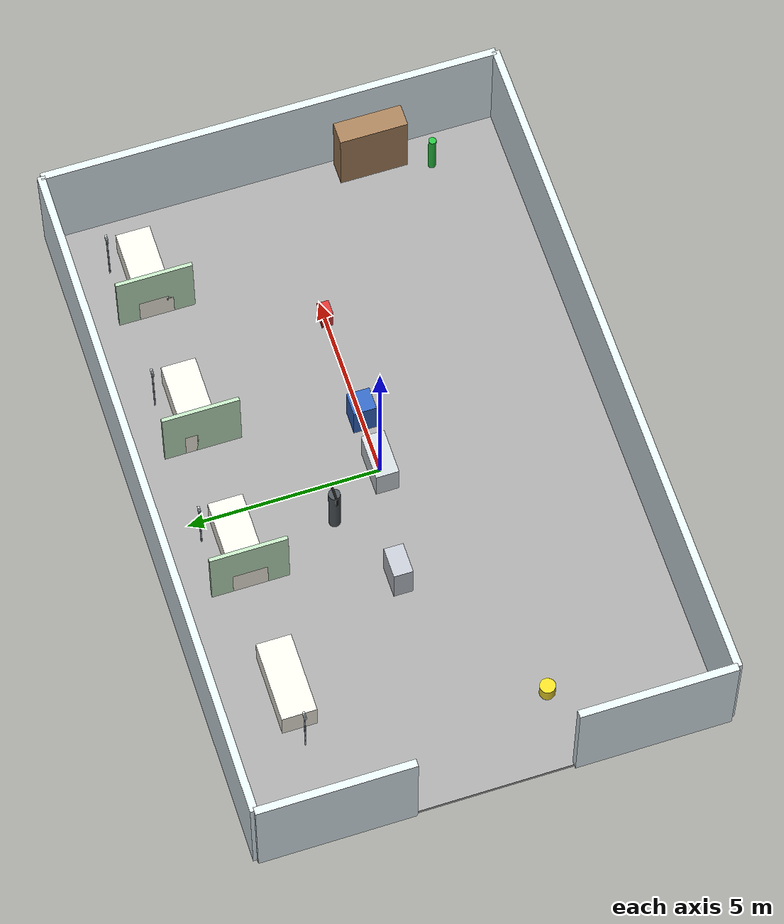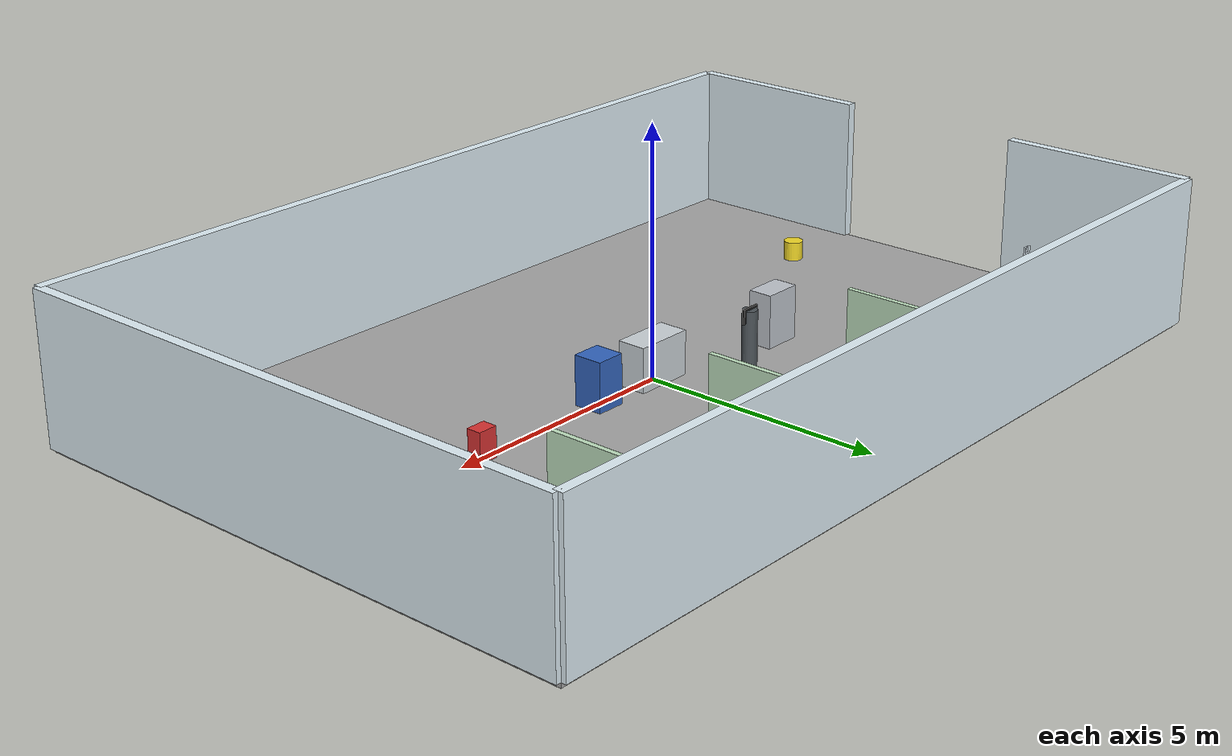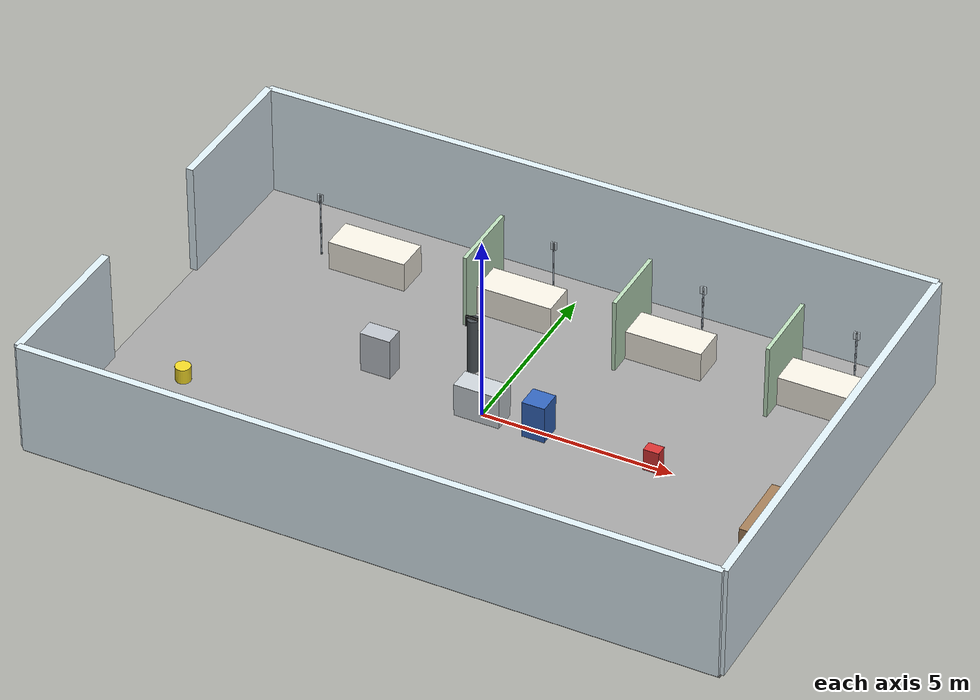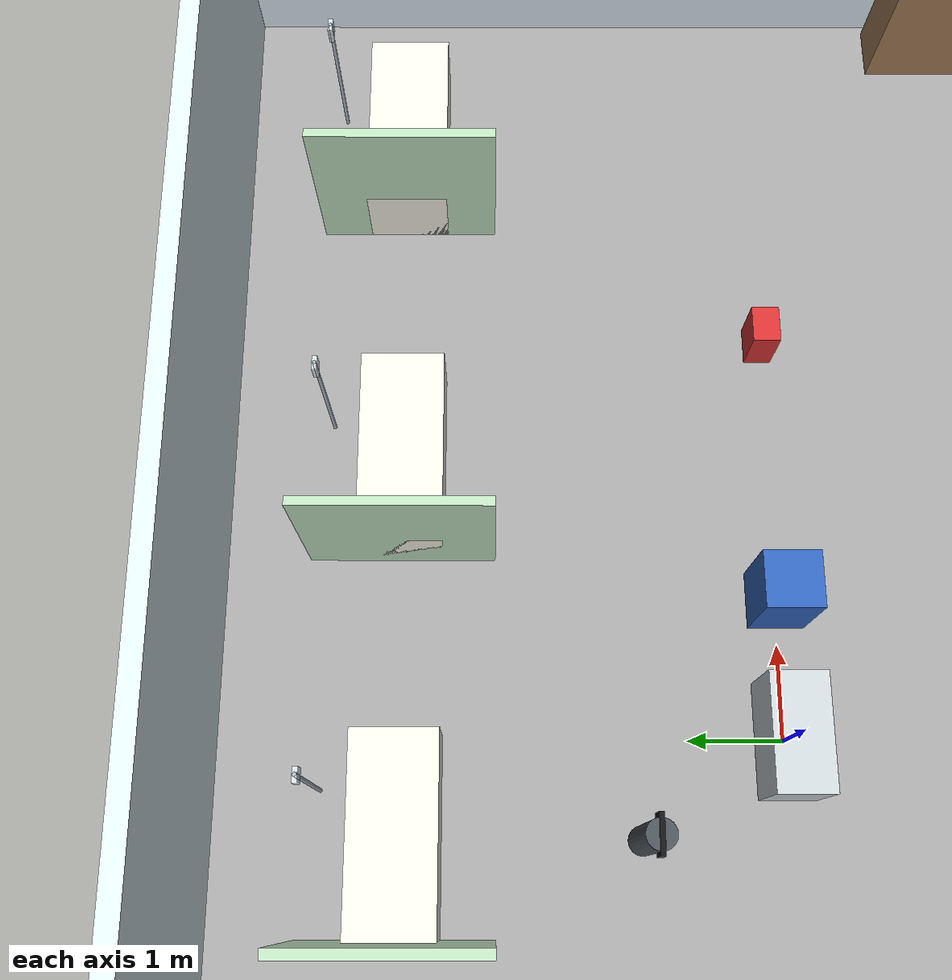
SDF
<?xml version="1.0" ?>
<sdf version="1.8">
  <world name="emergency_room">

    <!-- Physics Configuration -->
    <physics name="1ms" type="ignored">
      <max_step_size>0.001</max_step_size>
      <real_time_factor>1.0</real_time_factor>
    </physics>

    <!-- Plugin for physics -->
   <plugin name='ignition::gazebo::systems::Physics' filename='ignition-gazebo-physics-system'/>

    <!-- Plugin for user commands -->
    <plugin name='ignition::gazebo::systems::UserCommands' filename='ignition-gazebo-user-commands-system'/>

    <!-- Plugin for scene broadcast -->
   <plugin name='ignition::gazebo::systems::SceneBroadcaster' filename='ignition-gazebo-scene-broadcaster-system'/>

    <!-- Plugin for sensors -->
    <plugin filename="ignition-gazebo-sensors-system" name="ignition::gazebo::systems::Sensors">
      <render_engine>ogre2</render_engine>
    </plugin>

    <!-- Scene settings -->
    <scene>
      <ambient>0.6 0.6 0.6 1</ambient>
      <background>0.8 0.8 0.8 1</background>
      <shadows>true</shadows>
      <grid>false</grid>
    </scene>

    <!-- Lighting -->
    <light type="directional" name="sun">
      <cast_shadows>true</cast_shadows>
      <pose>0 0 10 0 0 0</pose>
      <diffuse>0.8 0.8 0.8 1</diffuse>
      <specular>0.2 0.2 0.2 1</specular>
      <attenuation>
        <range>1000</range>
        <constant>0.9</constant>
        <linear>0.01</linear>
        <quadratic>0.001</quadratic>
      </attenuation>
      <direction>-0.5 0.1 -0.9</direction>
    </light>

    <!-- Overhead ER Lighting -->

    <!-- Floor -->
    <model name="emergency_room_floor">
      <static>true</static>
      <link name="floor_link">
        <collision name="floor_collision">
          <geometry>
            <box>
              <size>18 12 0.1</size>
            </box>
          </geometry>
        </collision>
        <visual name="floor_visual">
          <geometry>
            <box>
              <size>18 12 0.1</size>
            </box>
          </geometry>
          <material>
            <ambient>0.6 0.6 0.6 1</ambient>
            <diffuse>0.65 0.65 0.65 1</diffuse>
            <specular>0.2 0.2 0.2 1</specular>
          </material>
        </visual>
        <pose>0 0 -0.05 0 0 0</pose>
      </link>
    </model>

    <!-- Room Walls -->
    <!-- North Wall -->
    <model name="north_wall">
      <static>true</static>
      <link name="wall_link">
        <collision name="wall_collision">
          <geometry>
            <box>
              <size>18 0.2 3</size>
            </box>
          </geometry>
        </collision>
        <visual name="wall_visual">
          <geometry>
            <box>
              <size>18 0.2 3</size>
            </box>
          </geometry>
          <material>
            <ambient>0.85 0.92 0.95 1</ambient>
            <diffuse>0.88 0.94 0.97 1</diffuse>
          </material>
        </visual>
        <pose>0 6 1.5 0 0 0</pose>
      </link>
    </model>

    <!-- South Wall -->
    <model name="south_wall">
      <static>true</static>
      <link name="wall_link">
        <collision name="wall_collision">
          <geometry>
            <box>
              <size>18 0.2 3</size>
            </box>
          </geometry>
        </collision>
        <visual name="wall_visual">
          <geometry>
            <box>
              <size>18 0.2 3</size>
            </box>
          </geometry>
          <material>
            <ambient>0.85 0.92 0.95 1</ambient>
            <diffuse>0.88 0.94 0.97 1</diffuse>
          </material>
        </visual>
        <pose>0 -6 1.5 0 0 0</pose>
      </link>
    </model>

    <!-- East Wall -->
    <model name="east_wall">
      <static>true</static>
      <link name="wall_link">
        <collision name="wall_collision">
          <geometry>
            <box>
              <size>0.2 12 3</size>
            </box>
          </geometry>
        </collision>
        <visual name="wall_visual">
          <geometry>
            <box>
              <size>0.2 12 3</size>
            </box>
          </geometry>
          <material>
            <ambient>0.85 0.92 0.95 1</ambient>
            <diffuse>0.88 0.94 0.97 1</diffuse>
          </material>
        </visual>
        <pose>9 0 1.5 0 0 0</pose>
      </link>
    </model>

    <!-- West Wall with Door Opening -->
    <model name="west_wall_1">
      <static>true</static>
      <link name="wall_link">
        <collision name="wall_collision">
          <geometry>
            <box>
              <size>0.2 4 3</size>
            </box>
          </geometry>
        </collision>
        <visual name="wall_visual">
          <geometry>
            <box>
              <size>0.2 4 3</size>
            </box>
          </geometry>
          <material>
            <ambient>0.85 0.92 0.95 1</ambient>
            <diffuse>0.88 0.94 0.97 1</diffuse>
          </material>
        </visual>
        <pose>-9 4 1.5 0 0 0</pose>
      </link>
    </model>

    <model name="west_wall_2">
      <static>true</static>
      <link name="wall_link">
        <collision name="wall_collision">
          <geometry>
            <box>
              <size>0.2 4 3</size>
            </box>
          </geometry>
        </collision>
        <visual name="wall_visual">
          <geometry>
            <box>
              <size>0.2 4 3</size>
            </box>
          </geometry>
          <material>
            <ambient>0.85 0.92 0.95 1</ambient>
            <diffuse>0.88 0.94 0.97 1</diffuse>
          </material>
        </visual>
        <pose>-9 -4 1.5 0 0 0</pose>
      </link>
    </model>

    <!-- Divider Walls for privacy between beds -->
    <model name="privacy_divider_1">
      <static>true</static>
      <link name="divider_link">
        <collision name="divider_collision">
          <geometry>
            <box>
              <size>0.1 2 2</size>
            </box>
          </geometry>
        </collision>
        <visual name="divider_visual">
          <geometry>
            <box>
              <size>0.1 2 2</size>
            </box>
          </geometry>
          <material>
            <ambient>0.7 0.85 0.7 1</ambient>
            <diffuse>0.75 0.88 0.75 1</diffuse>
          </material>
        </visual>
        <pose>-2 4 1 0 0 0</pose>
      </link>
    </model>

    <model name="privacy_divider_2">
      <static>true</static>
      <link name="divider_link">
        <collision name="divider_collision">
          <geometry>
            <box>
              <size>0.1 2 2</size>
            </box>
          </geometry>
        </collision>
        <visual name="divider_visual">
          <geometry>
            <box>
              <size>0.1 2 2</size>
            </box>
          </geometry>
          <material>
            <ambient>0.7 0.85 0.7 1</ambient>
            <diffuse>0.75 0.88 0.75 1</diffuse>
          </material>
        </visual>
        <pose>2 4 1 0 0 0</pose>
      </link>
    </model>

    <model name="privacy_divider_3">
      <static>true</static>
      <link name="divider_link">
        <collision name="divider_collision">
          <geometry>
            <box>
              <size>0.1 2 2</size>
            </box>
          </geometry>
        </collision>
        <visual name="divider_visual">
          <geometry>
            <box>
              <size>0.1 2 2</size>
            </box>
          </geometry>
          <material>
            <ambient>0.7 0.85 0.7 1</ambient>
            <diffuse>0.75 0.88 0.75 1</diffuse>
          </material>
        </visual>
        <pose>6 4 1 0 0 0</pose>
      </link>
    </model>

    <!-- Hospital Bed 1 (Stretcher) -->
    <model name="hospital_bed_1">
      <static>true</static>
      <link name="bed_frame">
        <collision name="bed_collision">
          <geometry>
            <box>
              <size>2.1 0.9 0.8</size>
            </box>
          </geometry>
        </collision>
        <visual name="bed_visual">
          <geometry>
            <box>
              <size>2.1 0.9 0.8</size>
            </box>
          </geometry>
          <material>
            <ambient>0.95 0.93 0.88 1</ambient>
            <diffuse>0.97 0.95 0.90 1</diffuse>
          </material>
        </visual>
        <pose>-5 4 0.4 0 0 0</pose>
      </link>
      <!-- Bed wheels -->
      <link name="wheel_1">
        <visual name="wheel_visual">
          <geometry>
            <cylinder>
              <radius>0.05</radius>
              <length>0.02</length>
            </cylinder>
          </geometry>
          <material>
            <ambient>0.15 0.15 0.15 1</ambient>
            <diffuse>0.2 0.2 0.2 1</diffuse>
          </material>
        </visual>
        <pose>-5.8 3.6 0.05 1.57 0 0</pose>
      </link>
      <link name="wheel_2">
        <visual name="wheel_visual">
          <geometry>
            <cylinder>
              <radius>0.05</radius>
              <length>0.02</length>
            </cylinder>
          </geometry>
          <material>
            <ambient>0.15 0.15 0.15 1</ambient>
            <diffuse>0.2 0.2 0.2 1</diffuse>
          </material>
        </visual>
        <pose>-5.8 4.4 0.05 1.57 0 0</pose>
      </link>
    </model>

    <!-- Hospital Bed 2 (Stretcher) -->
    <model name="hospital_bed_2">
      <static>true</static>
      <link name="bed_frame">
        <collision name="bed_collision">
          <geometry>
            <box>
              <size>2.1 0.9 0.8</size>
            </box>
          </geometry>
        </collision>
        <visual name="bed_visual">
          <geometry>
            <box>
              <size>2.1 0.9 0.8</size>
            </box>
          </geometry>
          <material>
            <ambient>0.95 0.93 0.88 1</ambient>
            <diffuse>0.97 0.95 0.90 1</diffuse>
          </material>
        </visual>
        <pose>-1 4 0.4 0 0 0</pose>
      </link>
      <!-- Bed wheels -->
      <link name="wheel_1">
        <visual name="wheel_visual">
          <geometry>
            <cylinder>
              <radius>0.05</radius>
              <length>0.02</length>
            </cylinder>
          </geometry>
          <material>
            <ambient>0.15 0.15 0.15 1</ambient>
            <diffuse>0.2 0.2 0.2 1</diffuse>
          </material>
        </visual>
        <pose>-1.8 3.6 0.05 1.57 0 0</pose>
      </link>
      <link name="wheel_2">
        <visual name="wheel_visual">
          <geometry>
            <cylinder>
              <radius>0.05</radius>
              <length>0.02</length>
            </cylinder>
          </geometry>
          <material>
            <ambient>0.15 0.15 0.15 1</ambient>
            <diffuse>0.2 0.2 0.2 1</diffuse>
          </material>
        </visual>
        <pose>-1.8 4.4 0.05 1.57 0 0</pose>
      </link>
    </model>

    <!-- Hospital Bed 3 (Stretcher) - Right side -->
    <model name="hospital_bed_3">
      <static>true</static>
      <link name="bed_frame">
        <collision name="bed_collision">
          <geometry>
            <box>
              <size>2.1 0.9 0.8</size>
            </box>
          </geometry>
        </collision>
        <visual name="bed_visual">
          <geometry>
            <box>
              <size>2.1 0.9 0.8</size>
            </box>
          </geometry>
          <material>
            <ambient>0.95 0.93 0.88 1</ambient>
            <diffuse>0.97 0.95 0.90 1</diffuse>
          </material>
        </visual>
        <pose>3 4 0.4 0 0 0</pose>
      </link>
      <!-- Bed wheels -->
      <link name="wheel_1">
        <visual name="wheel_visual">
          <geometry>
            <cylinder>
              <radius>0.05</radius>
              <length>0.02</length>
            </cylinder>
          </geometry>
          <material>
            <ambient>0.15 0.15 0.15 1</ambient>
            <diffuse>0.2 0.2 0.2 1</diffuse>
          </material>
        </visual>
        <pose>2.2 3.6 0.05 1.57 0 0</pose>
      </link>
      <link name="wheel_2">
        <visual name="wheel_visual">
          <geometry>
            <cylinder>
              <radius>0.05</radius>
              <length>0.02</length>
            </cylinder>
          </geometry>
          <material>
            <ambient>0.15 0.15 0.15 1</ambient>
            <diffuse>0.2 0.2 0.2 1</diffuse>
          </material>
        </visual>
        <pose>2.2 4.4 0.05 1.57 0 0</pose>
      </link>
    </model>

    <!-- Hospital Bed 4 (Stretcher) - Right side -->
    <model name="hospital_bed_4">
      <static>true</static>
      <link name="bed_frame">
        <collision name="bed_collision">
          <geometry>
            <box>
              <size>2.1 0.9 0.8</size>
            </box>
          </geometry>
        </collision>
        <visual name="bed_visual">
          <geometry>
            <box>
              <size>2.1 0.9 0.8</size>
            </box>
          </geometry>
          <material>
            <ambient>0.95 0.93 0.88 1</ambient>
            <diffuse>0.97 0.95 0.90 1</diffuse>
          </material>
        </visual>
        <pose>7 4 0.4 0 0 0</pose>
      </link>
      <!-- Bed wheels -->
      <link name="wheel_1">
        <visual name="wheel_visual">
          <geometry>
            <cylinder>
              <radius>0.05</radius>
              <length>0.02</length>
            </cylinder>
          </geometry>
          <material>
            <ambient>0.15 0.15 0.15 1</ambient>
            <diffuse>0.2 0.2 0.2 1</diffuse>
          </material>
        </visual>
        <pose>6.2 3.6 0.05 1.57 0 0</pose>
      </link>
      <link name="wheel_2">
        <visual name="wheel_visual">
          <geometry>
            <cylinder>
              <radius>0.05</radius>
              <length>0.02</length>
            </cylinder>
          </geometry>
          <material>
            <ambient>0.15 0.15 0.15 1</ambient>
            <diffuse>0.2 0.2 0.2 1</diffuse>
          </material>
        </visual>
        <pose>6.2 4.4 0.05 1.57 0 0</pose>
      </link>
    </model>

    <!-- Medical Table -->
    <model name="medical_table">
      <static>true</static>
      <link name="table_link">
        <collision name="table_collision">
          <geometry>
            <box>
              <size>1.2 0.6 0.9</size>
            </box>
          </geometry>
        </collision>
        <visual name="table_visual">
          <geometry>
            <box>
              <size>1.2 0.6 0.9</size>
            </box>
          </geometry>
          <material>
            <ambient>0.75 0.78 0.8 1</ambient>
            <diffuse>0.8 0.83 0.85 1</diffuse>
          </material>
        </visual>
        <pose>0 0 0.45 0 0 0</pose>
      </link>
    </model>

    <!-- Doctor's Chair -->
    <model name="doctors_chair">
      <static>true</static>
      <link name="chair_link">
        <collision name="chair_collision">
          <geometry>
            <box>
              <size>0.6 0.6 1.0</size>
            </box>
          </geometry>
        </collision>
        <visual name="chair_visual">
          <geometry>
            <box>
              <size>0.6 0.6 1.0</size>
            </box>
          </geometry>
          <material>
            <ambient>0.15 0.35 0.7 1</ambient>
            <diffuse>0.2 0.4 0.75 1</diffuse>
          </material>
        </visual>
        <pose>1.5 0 0.5 0 0 0</pose>
      </link>
    </model>

    <!-- IV Stand 1 -->
    <model name="iv_stand_1">
      <static>true</static>
      <link name="pole_link">
        <collision name="pole_collision">
          <geometry>
            <cylinder>
              <radius>0.02</radius>
              <length>1.8</length>
            </cylinder>
          </geometry>
        </collision>
        <visual name="pole_visual">
          <geometry>
            <cylinder>
              <radius>0.02</radius>
              <length>1.8</length>
            </cylinder>
          </geometry>
          <material>
            <ambient>0.6 0.65 0.7 1</ambient>
            <diffuse>0.7 0.75 0.8 1</diffuse>
          </material>
        </visual>
        <pose>-6.5 4 0.9 0 0 0</pose>
      </link>
      <!-- IV bag -->
      <link name="iv_bag">
        <visual name="bag_visual">
          <geometry>
            <box>
              <size>0.15 0.05 0.2</size>
            </box>
          </geometry>
          <material>
            <ambient>0.9 0.95 1.0 0.8</ambient>
            <diffuse>0.92 0.97 1.0 0.8</diffuse>
          </material>
        </visual>
        <pose>-6.5 4 1.7 0 0 0</pose>
      </link>
    </model>

    <!-- IV Stand 2 -->
    <model name="iv_stand_2">
      <static>true</static>
      <link name="pole_link">
        <collision name="pole_collision">
          <geometry>
            <cylinder>
              <radius>0.02</radius>
              <length>1.8</length>
            </cylinder>
          </geometry>
        </collision>
        <visual name="pole_visual">
          <geometry>
            <cylinder>
              <radius>0.02</radius>
              <length>1.8</length>
            </cylinder>
          </geometry>
          <material>
            <ambient>0.6 0.65 0.7 1</ambient>
            <diffuse>0.7 0.75 0.8 1</diffuse>
          </material>
        </visual>
        <pose>-0.5 4.8 0.9 0 0 0</pose>
      </link>
      <!-- IV bag -->
      <link name="iv_bag">
        <visual name="bag_visual">
          <geometry>
            <box>
              <size>0.15 0.05 0.2</size>
            </box>
          </geometry>
          <material>
            <ambient>0.9 0.95 1.0 0.8</ambient>
            <diffuse>0.92 0.97 1.0 0.8</diffuse>
          </material>
        </visual>
        <pose>-0.5 4.8 1.7 0 0 0</pose>
      </link>
    </model>

    <!-- IV Stand 3 -->
    <model name="iv_stand_3">
      <static>true</static>
      <link name="pole_link">
        <collision name="pole_collision">
          <geometry>
            <cylinder>
              <radius>0.02</radius>
              <length>1.8</length>
            </cylinder>
          </geometry>
        </collision>
        <visual name="pole_visual">
          <geometry>
            <cylinder>
              <radius>0.02</radius>
              <length>1.8</length>
            </cylinder>
          </geometry>
          <material>
            <ambient>0.6 0.65 0.7 1</ambient>
            <diffuse>0.7 0.75 0.8 1</diffuse>
          </material>
        </visual>
        <pose>3.5 4.8 0.9 0 0 0</pose>
      </link>
      <!-- IV bag -->
      <link name="iv_bag">
        <visual name="bag_visual">
          <geometry>
            <box>
              <size>0.15 0.05 0.2</size>
            </box>
          </geometry>
          <material>
            <ambient>0.9 0.95 1.0 0.8</ambient>
            <diffuse>0.92 0.97 1.0 0.8</diffuse>
          </material>
        </visual>
        <pose>3.5 4.8 1.7 0 0 0</pose>
      </link>
    </model>

    <!-- IV Stand 4 -->
    <model name="iv_stand_4">
      <static>true</static>
      <link name="pole_link">
        <collision name="pole_collision">
          <geometry>
            <cylinder>
              <radius>0.02</radius>
              <length>1.8</length>
            </cylinder>
          </geometry>
        </collision>
        <visual name="pole_visual">
          <geometry>
            <cylinder>
              <radius>0.02</radius>
              <length>1.8</length>
            </cylinder>
          </geometry>
          <material>
            <ambient>0.6 0.65 0.7 1</ambient>
            <diffuse>0.7 0.75 0.8 1</diffuse>
          </material>
        </visual>
        <pose>7.5 4.8 0.9 0 0 0</pose>
      </link>
      <!-- IV bag -->
      <link name="iv_bag">
        <visual name="bag_visual">
          <geometry>
            <box>
              <size>0.15 0.05 0.2</size>
            </box>
          </geometry>
          <material>
            <ambient>0.9 0.95 1.0 0.8</ambient>
            <diffuse>0.92 0.97 1.0 0.8</diffuse>
          </material>
        </visual>
        <pose>7.5 4.8 1.7 0 0 0</pose>
      </link>
    </model>

    <!-- Medical Equipment Cart -->
    <model name="medical_cart">
      <static>true</static>
      <link name="cart_link">
        <collision name="cart_collision">
          <geometry>
            <box>
              <size>0.8 0.5 1.1</size>
            </box>
          </geometry>
        </collision>
        <visual name="cart_visual">
          <geometry>
            <box>
              <size>0.8 0.5 1.1</size>
            </box>
          </geometry>
          <material>
            <ambient>0.7 0.72 0.75 1</ambient>
            <diffuse>0.75 0.77 0.8 1</diffuse>
          </material>
        </visual>
        <pose>-3 0.5 0.55 0 0 0</pose>
      </link>
      <!-- Cart wheels -->
      <link name="cart_wheel_1">
        <visual name="wheel_visual">
          <geometry>
            <cylinder>
              <radius>0.05</radius>
              <length>0.02</length>
            </cylinder>
          </geometry>
          <material>
            <ambient>0.15 0.15 0.15 1</ambient>
            <diffuse>0.2 0.2 0.2 1</diffuse>
          </material>
        </visual>
        <pose>-3.3 0.3 0.05 1.57 0 0</pose>
      </link>
    </model>

    <!-- Defibrillator -->
    <model name="defibrillator">
      <static>true</static>
      <link name="defib_link">
        <collision name="defib_collision">
          <geometry>
            <box>
              <size>0.4 0.3 0.6</size>
            </box>
          </geometry>
        </collision>
        <visual name="defib_visual">
          <geometry>
            <box>
              <size>0.4 0.3 0.6</size>
            </box>
          </geometry>
          <material>
            <ambient>0.8 0.15 0.15 1</ambient>
            <diffuse>0.85 0.2 0.2 1</diffuse>
          </material>
        </visual>
        <pose>4.5 0 0.3 0 0 0</pose>
      </link>
    </model>

    <!-- Monitor Stand -->
    <model name="monitor_stand">
      <static>true</static>
      <link name="stand_link">
        <collision name="stand_collision">
          <geometry>
            <cylinder>
              <radius>0.15</radius>
              <length>1.5</length>
            </cylinder>
          </geometry>
        </collision>
        <visual name="stand_visual">
          <geometry>
            <cylinder>
              <radius>0.15</radius>
              <length>1.5</length>
            </cylinder>
          </geometry>
          <material>
            <ambient>0.25 0.28 0.3 1</ambient>
            <diffuse>0.3 0.33 0.35 1</diffuse>
          </material>
        </visual>
        <pose>-1 1.5 0.75 0 0 0</pose>
      </link>
      <!-- Monitor screen -->
      <link name="monitor_screen">
        <visual name="screen_visual">
          <geometry>
            <box>
              <size>0.4 0.05 0.3</size>
            </box>
          </geometry>
          <material>
            <ambient>0.05 0.05 0.05 1</ambient>
            <diffuse>0.08 0.08 0.08 1</diffuse>
          </material>
        </visual>
        <pose>-1 1.5 1.4 0 0 0</pose>
      </link>
    </model>

    <!-- Medical Supply Cabinet -->
    <model name="supply_cabinet">
      <static>true</static>
      <link name="cabinet_link">
        <collision name="cabinet_collision">
          <geometry>
            <box>
              <size>0.6 1.8 2.0</size>
            </box>
          </geometry>
        </collision>
        <visual name="cabinet_visual">
          <geometry>
            <box>
              <size>0.6 1.8 2.0</size>
            </box>
          </geometry>
          <material>
            <ambient>0.6 0.45 0.3 1</ambient>
            <diffuse>0.65 0.5 0.35 1</diffuse>
          </material>
        </visual>
        <pose>8.5 -2.5 1.0 0 0 0</pose>
      </link>
    </model>

    <!-- Waste Bin -->
    <model name="waste_bin">
      <static>true</static>
      <link name="bin_link">
        <collision name="bin_collision">
          <geometry>
            <cylinder>
              <radius>0.2</radius>
              <length>0.4</length>
            </cylinder>
          </geometry>
        </collision>
        <visual name="bin_visual">
          <geometry>
            <cylinder>
              <radius>0.2</radius>
              <length>0.4</length>
            </cylinder>
          </geometry>
          <material>
            <ambient>0.9 0.8 0.1 1</ambient>
            <diffuse>0.95 0.85 0.15 1</diffuse>
          </material>
        </visual>
        <pose>-7 -2 0.2 0 0 0</pose>
      </link>
    </model>

    <!-- Oxygen Tank -->
    <model name="oxygen_tank">
      <static>true</static>
      <link name="tank_link">
        <collision name="tank_collision">
          <geometry>
            <cylinder>
              <radius>0.1</radius>
              <length>1.2</length>
            </cylinder>
          </geometry>
        </collision>
        <visual name="tank_visual">
          <geometry>
            <cylinder>
              <radius>0.1</radius>
              <length>1.2</length>
            </cylinder>
          </geometry>
          <material>
            <ambient>0.1 0.7 0.2 1</ambient>
            <diffuse>0.15 0.75 0.25 1</diffuse>
          </material>
        </visual>
        <pose>8 -4 0.6 0 0 0</pose>
      </link>
    </model>

    <!-- Robot Spawn Point -->

  </world>
</sdf>
